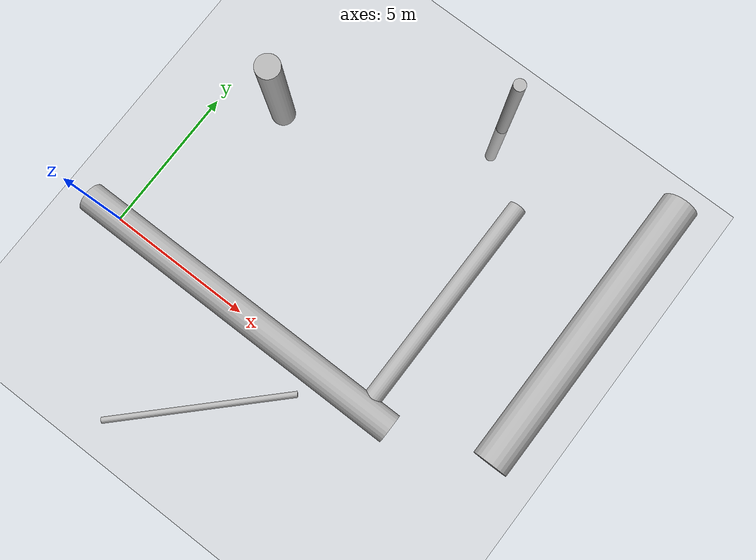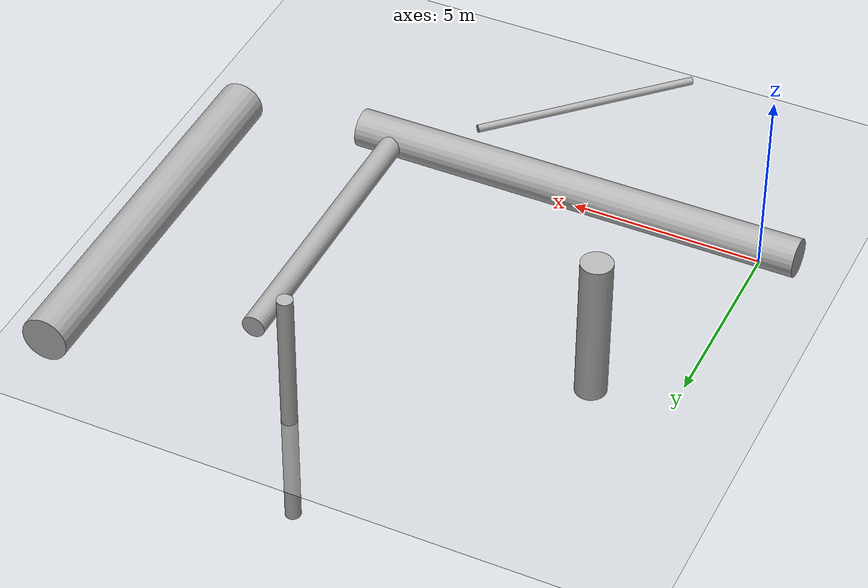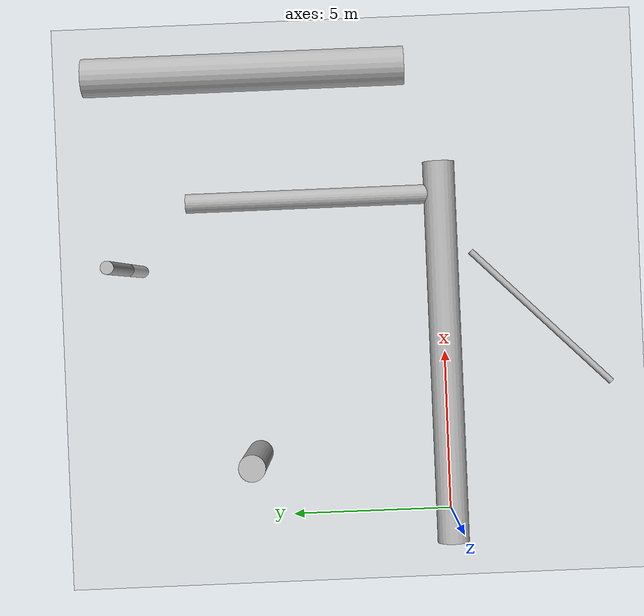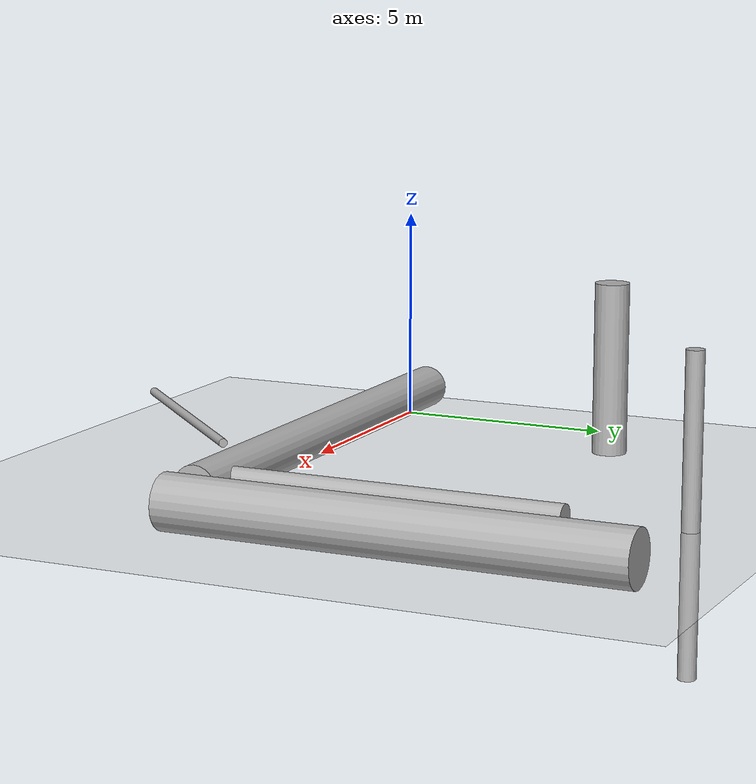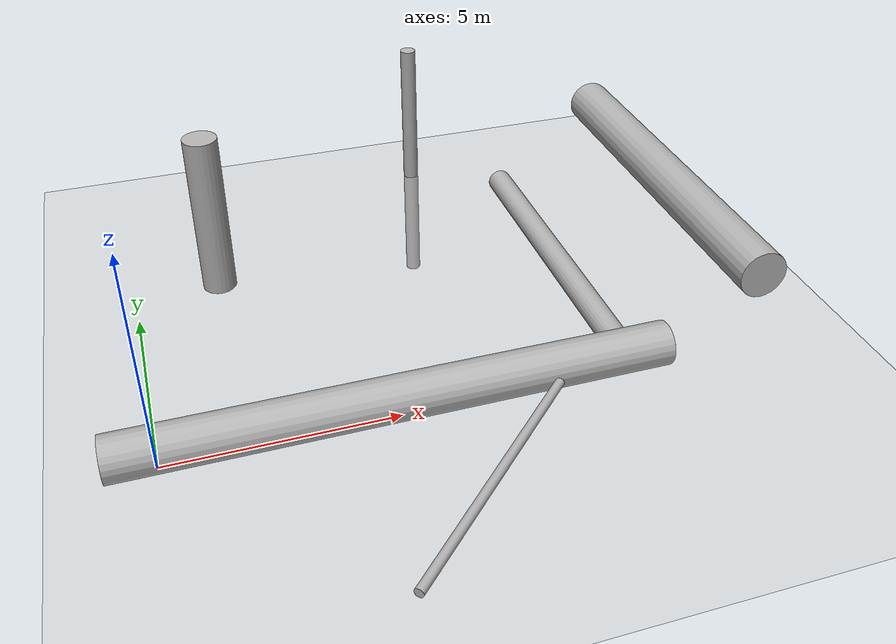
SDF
<?xml version="1.0" ?>
<sdf version="1.6">
  <world name="pipe_network_world">
    <include>
      <uri>model://ground_plane</uri>
    </include>
    <include>
      <uri>model://sun</uri>
    </include>

    <!-- main_header_1 -->
    <model name="main_header_1">
      <static>true</static>
      <pose>5.0 0.0 0.5 0.0 1.5707 0.0</pose>
      <link name="link">
        <visual name="visual">
          <geometry>
            <cylinder>
              <radius>0.5</radius>
              <length>12.0</length>
            </cylinder>
          </geometry>
          <material>
            <ambient>0.6 0.6 0.6 1</ambient>
            <diffuse>0.7 0.7 0.7 1</diffuse>
          </material>
        </visual>
        <collision name="collision">
          <geometry>
            <cylinder>
              <radius>0.5</radius>
              <length>12.0</length>
            </cylinder>
          </geometry>
        </collision>
      </link>
    </model>

    <!-- branch_line_1 -->
    <model name="branch_line_1">
      <static>true</static>
      <pose>10.0 4.0 0.5 1.5707 0.0 0.0</pose>
      <link name="link">
        <visual name="visual">
          <geometry>
            <cylinder>
              <radius>0.3</radius>
              <length>8.0</length>
            </cylinder>
          </geometry>
          <material>
            <ambient>0.6 0.6 0.6 1</ambient>
            <diffuse>0.7 0.7 0.7 1</diffuse>
          </material>
        </visual>
        <collision name="collision">
          <geometry>
            <cylinder>
              <radius>0.3</radius>
              <length>8.0</length>
            </cylinder>
          </geometry>
        </collision>
      </link>
    </model>

    <!-- riser_vertical_1 -->
    <model name="riser_vertical_1">
      <static>true</static>
      <pose>2.0 6.0 2.0 0.0 0.0 0.0</pose>
      <link name="link">
        <visual name="visual">
          <geometry>
            <cylinder>
              <radius>0.4</radius>
              <length>4.0</length>
            </cylinder>
          </geometry>
          <material>
            <ambient>0.6 0.6 0.6 1</ambient>
            <diffuse>0.7 0.7 0.7 1</diffuse>
          </material>
        </visual>
        <collision name="collision">
          <geometry>
            <cylinder>
              <radius>0.4</radius>
              <length>4.0</length>
            </cylinder>
          </geometry>
        </collision>
      </link>
    </model>

    <!-- instrument_line_1 -->
    <model name="instrument_line_1">
      <static>true</static>
      <pose>6.0 -3.0 0.8 0.0 1.5707 0.785</pose>
      <link name="link">
        <visual name="visual">
          <geometry>
            <cylinder>
              <radius>0.1</radius>
              <length>6.0</length>
            </cylinder>
          </geometry>
          <material>
            <ambient>0.6 0.6 0.6 1</ambient>
            <diffuse>0.7 0.7 0.7 1</diffuse>
          </material>
        </visual>
        <collision name="collision">
          <geometry>
            <cylinder>
              <radius>0.1</radius>
              <length>6.0</length>
            </cylinder>
          </geometry>
        </collision>
      </link>
    </model>

    <!-- manifold_cross_2 -->
    <model name="manifold_cross_2">
      <static>true</static>
      <pose>14.0 6.0 1.0 1.5707 1.5707 0.0</pose>
      <link name="link">
        <visual name="visual">
          <geometry>
            <cylinder>
              <radius>0.6</radius>
              <length>10.0</length>
            </cylinder>
          </geometry>
          <material>
            <ambient>0.6 0.6 0.6 1</ambient>
            <diffuse>0.7 0.7 0.7 1</diffuse>
          </material>
        </visual>
        <collision name="collision">
          <geometry>
            <cylinder>
              <radius>0.6</radius>
              <length>10.0</length>
            </cylinder>
          </geometry>
        </collision>
      </link>
    </model>

    <!-- bypass_line_3 -->
    <model name="bypass_line_3">
      <static>true</static>
      <pose>8.0 10.0 0.3 0.0 0.0 0.0</pose>
      <link name="link">
        <visual name="visual">
          <geometry>
            <cylinder>
              <radius>0.2</radius>
              <length>7.0</length>
            </cylinder>
          </geometry>
          <material>
            <ambient>0.6 0.6 0.6 1</ambient>
            <diffuse>0.7 0.7 0.7 1</diffuse>
          </material>
        </visual>
        <collision name="collision">
          <geometry>
            <cylinder>
              <radius>0.2</radius>
              <length>7.0</length>
            </cylinder>
          </geometry>
        </collision>
      </link>
    </model>

  </world>
</sdf>
